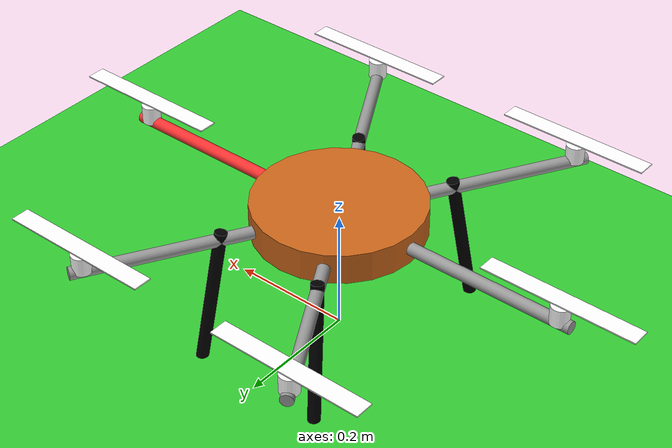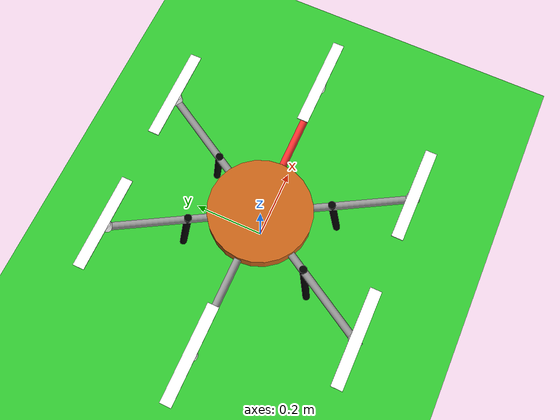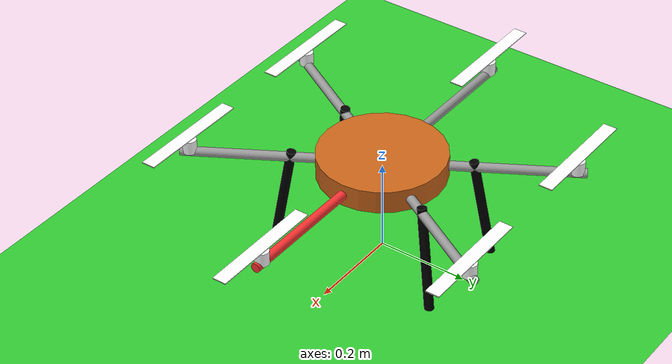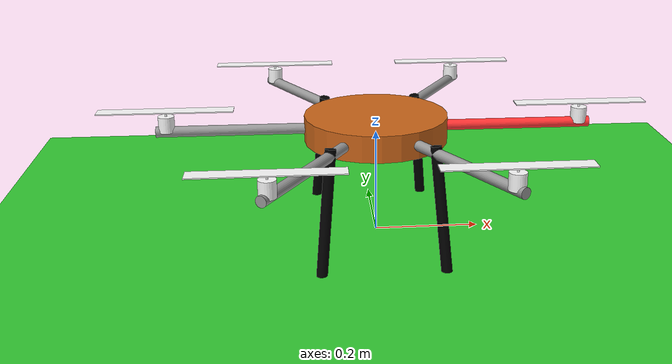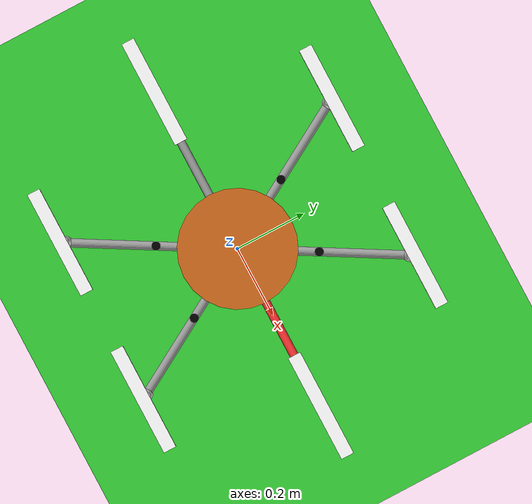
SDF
<?xml version="1.0"?>
<sdf version="1.5">
  <world name="mrsim">
    <physics name='1ms' type='unused'>
      <max_step_size>0.002000</max_step_size>
      <real_time_factor>1.000000</real_time_factor>
      <real_time_update_rate>500.000000</real_time_update_rate>
      <gravity>0 0 -9.81</gravity>
      <magnetic_field>23.816e-6 -0.41e-6 -39.829e-6</magnetic_field>
    </physics>
    <light type="directional" name="sun">
      <cast_shadows>true</cast_shadows>
      <pose>0 0 10 0 0 0</pose>
      <diffuse>0.8 0.8 0.8 1</diffuse>
      <specular>0.2 0.2 0.2 1</specular>
      <attenuation><range>1000</range><constant>0.9</constant><linear>0.01</linear><quadratic>0.001</quadratic></attenuation>
      <direction>-0.5 0.1 -0.9</direction>
    </light>
    <model name="ground_plane">
      <static>true</static>
      <link name="link">
        <collision name="collision">
          <geometry><plane><normal>0 0 1.0</normal><size>100 100</size></plane></geometry>
        </collision>
        <visual name="visual">
          <geometry><plane><normal>0 0 1.0</normal><size>100 100</size></plane></geometry>
          <material><ambient>0.2 0.8 0.2 1</ambient><diffuse>0.2 0.8 0.2 1</diffuse><specular>0.2 0.8 0.2 1</specular></material>
        </visual>
      </link>
    </model>
    <include>
      <uri>model://mrsim-hexa-ua</uri>
      <name>hu6</name>
      <pose>0 0 0.21 0 0 0</pose>
    </include>
    <plugin name="gz::sim::systems::Sensors" filename="gz-sim-sensors-system">
      <render_engine>ogre2</render_engine>
    </plugin>
    <plugin name="optitrack" filename="optitrack-gazebo.so">
      <hz>100</hz>
      <port>1509</port>
      <publish>
        <link>hu6::base</link>
        <name>HU_6</name>
      </publish>
    </plugin>
  </world>
</sdf>

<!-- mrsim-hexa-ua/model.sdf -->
<!-- Under-actuated hexarotor: based on mrsim-tilthex with tilt removed (pitch=0) -->
<sdf version="1.5">
  <model name="mrsim-hexa-ua">
    <link name="base">
      <inertial>
        <mass>2.3</mass>
        <inertia>
          <ixx>0.0115</ixx><ixy>0</ixy><ixz>0</ixz>
          <iyy>0.0114</iyy><iyz>0</iyz>
          <izz>0.0194</izz>
        </inertia>
      </inertial>
      <collision name="base">
        <pose>0 0 -0.05 0 0 0</pose>
        <geometry><cylinder><radius>0.1354</radius><length>0.15</length></cylinder></geometry>
      </collision>
      <collision name="land_1">
        <pose>0.2 0 -0.21 0 0 0</pose>
        <geometry><sphere><radius>0.03</radius></sphere></geometry>
      </collision>
      <collision name="land_2">
        <pose>-0.1 0.173 -0.21 0 0 0</pose>
        <geometry><sphere><radius>0.03</radius></sphere></geometry>
      </collision>
      <collision name="land_3">
        <pose>-0.1 -0.173 -0.21 0 0 0</pose>
        <geometry><sphere><radius>0.03</radius></sphere></geometry>
      </collision>
      <visual name="body">
        <geometry><cylinder><radius>0.1354</radius><length>0.05</length></cylinder></geometry>
        <material><ambient>0.8 0.4 0.1 1</ambient><diffuse>0.8 0.4 0.1 1</diffuse></material>
      </visual>
      <visual name="lander-1">
        <pose>0.1025 0.1776 -0.11 3.1416 -0.1736 1.0472</pose>
        <geometry>
          <cylinder><radius>0.01</radius><length>0.25</length></cylinder>
        </geometry>
        <material>
          <ambient>0 0 0 1.0</ambient>
          <diffuse>0 0 0 1.0</diffuse>
        </material>
      </visual>
      <visual name="lander-2">
        <pose>-0.1025 0.1776 -0.11 3.1416 -0.1736 2.0944</pose>
        <geometry>
          <cylinder><radius>0.01</radius><length>0.25</length></cylinder>
        </geometry>
        <material>
          <ambient>0 0 0 1.0</ambient>
          <diffuse>0 0 0 1.0</diffuse>
        </material>
      </visual>
      <visual name="lander-3">
       <pose>-0.1025 -0.1776 -0.11 3.1416 0.1736 1.0472</pose>
        <geometry>
          <cylinder><radius>0.01</radius><length>0.25</length></cylinder>
        </geometry>
        <material>
          <ambient>0 0 0 1.0</ambient>
          <diffuse>0 0 0 1.0</diffuse>
        </material>
      </visual>
      <visual name="lander-4">
        <pose>0.1025 -0.1776 -0.11 3.1416 0.1736 2.0944</pose>
        <geometry>
          <cylinder><radius>0.01</radius><length>0.25</length></cylinder>
        </geometry>
        <material>
          <ambient>0 0 0 1.0</ambient>
          <diffuse>0 0 0 1.0</diffuse>
        </material>
      </visual>

      <visual name="arm-1">
        <pose>0.2150 0 0 0 1.5708 0</pose>
        <geometry><cylinder><radius>0.01</radius><length>0.38998</length></cylinder></geometry>
        <material><ambient>1.0 0.2 0.2 1.0</ambient><diffuse>1.0 0.2 0.2 1.0</diffuse></material>
      </visual>
      <visual name="arm-2">
        <pose>0.1025 0.1776 0 0 1.5708 1.0472</pose>
        <geometry><cylinder><radius>0.01</radius><length>0.40998</length></cylinder></geometry>
        <material><ambient>0.6 0.6 0.6 1</ambient><diffuse>0.6 0.6 0.6 1</diffuse></material>
      </visual>
      <visual name="arm-3">
        <pose>-0.1025 0.1776 0 0 1.5708 2.0944</pose>
        <geometry><cylinder><radius>0.01</radius><length>0.40998</length></cylinder></geometry>
        <material><ambient>0.6 0.6 0.6 1</ambient><diffuse>0.6 0.6 0.6 1</diffuse></material>
      </visual>
      <visual name="arm-4">
        <pose>-0.2150 0 0 0 1.5708 0</pose>
        <geometry><cylinder><radius>0.01</radius><length>0.38998</length></cylinder></geometry>
        <material><ambient>0.6 0.6 0.6 1</ambient><diffuse>0.6 0.6 0.6 1</diffuse></material>
      </visual>
      <visual name="arm-5">
        <pose>-0.1025 -0.1776 0 0 1.5708 -2.0944</pose>
        <geometry><cylinder><radius>0.01</radius><length>0.40998</length></cylinder></geometry>
        <material><ambient>0.6 0.6 0.6 1</ambient><diffuse>0.6 0.6 0.6 1</diffuse></material>
      </visual>
      <visual name="arm-6">
        <pose>0.1025 -0.1776 0 0 1.5708 -1.0472</pose>
        <geometry><cylinder><radius>0.01</radius><length>0.40998</length></cylinder></geometry>
        <material><ambient>0.6 0.6 0.6 1</ambient><diffuse>0.6 0.6 0.6 1</diffuse></material>
      </visual>
    </link>

    <include>
      <uri>model://mrsim-rotor</uri>
      <name>rotor-1</name>
      <pose>0.38998 0 0 0 0 0</pose>
    </include>
    <joint name="motor-1" type="revolute">
      <parent>base</parent>
      <child>rotor-1::propeller</child>
      <axis><xyz>0 0 1</xyz></axis>
    </joint>

    <include>
      <uri>model://mrsim-rotor</uri>
      <name>rotor-2</name>
      <pose>0.195 0.3377 0 0 0 0</pose>
    </include>
    <joint name="motor-2" type="revolute">
      <parent>base</parent>
      <child>rotor-2::propeller</child>
      <axis><xyz>0 0 1</xyz></axis>
    </joint>

    <include>
      <uri>model://mrsim-rotor</uri>
      <name>rotor-3</name>
      <pose>-0.195 0.3377 0 0 0 0</pose>
    </include>
    <joint name="motor-3" type="revolute">
      <parent>base</parent>
      <child>rotor-3::propeller</child>
      <axis><xyz>0 0 1</xyz></axis>
    </joint>

    <include>
      <uri>model://mrsim-rotor</uri>
      <name>rotor-4</name>
      <pose>-0.38998 0 0 0 0 0</pose>
    </include>
    <joint name="motor-4" type="revolute">
      <parent>base</parent>
      <child>rotor-4::propeller</child>
      <axis><xyz>0 0 1</xyz></axis>
    </joint>

    <include>
      <uri>model://mrsim-rotor</uri>
      <name>rotor-5</name>
      <pose>-0.195 -0.3377 0 0 0 0</pose>
    </include>
    <joint name="motor-5" type="revolute">
      <parent>base</parent>
      <child>rotor-5::propeller</child>
      <axis><xyz>0 0 1</xyz></axis>
    </joint>

    <include>
      <uri>model://mrsim-rotor</uri>
      <name>rotor-6</name>
      <pose>0.195 -0.3377 0 0 0 0</pose>
    </include>
    <joint name="motor-6" type="revolute">
      <parent>base</parent>
      <child>rotor-6::propeller</child>
      <axis><xyz>0 0 1</xyz></axis>
    </joint>

    <plugin name="mrsim" filename="mrsim-gazebo.so">
      <link>base</link>
      <rotors>
        <noise>0.03</noise>
        <cf>9.9016e-4</cf>
        <ct>1.9e-5</ct>
        <vfxy>0.5</vfxy><vfz>0.5</vfz>
        <vtxy>0.5</vtxy><vtz>0.5</vtz>
        <rotor><joint spin="cw">motor-1</joint></rotor>
        <rotor><joint spin="ccw">motor-2</joint></rotor>
        <rotor><joint spin="cw">motor-3</joint></rotor>
        <rotor><joint spin="ccw">motor-4</joint></rotor>
        <rotor><joint spin="cw">motor-5</joint></rotor>
        <rotor><joint spin="ccw">motor-6</joint></rotor>
      </rotors>
    </plugin>
  </model>
</sdf>

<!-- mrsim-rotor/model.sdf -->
<sdf version="1.5">
  <model name="mrsim-rotor">
    <link name="propeller">
      <inertial>
        <mass>0.07</mass>
        <inertia>
          <ixx>4e-5</ixx><ixy>0</ixy><ixz>0</ixz>
          <iyy>4e-5</iyy><iyz>0</iyz>
          <izz>8e-5</izz>
        </inertia>
      </inertial>

      <collision name="collision">
        <pose>0 0 0.04 0 0 0</pose>
        <geometry>
          <cylinder><radius>0.127</radius><length>0.002</length></cylinder>
        </geometry>
      </collision>

      <visual name="motor">
        <pose>0 0 0.015 0 0 0</pose>
        <geometry>
          <cylinder><radius>0.015</radius><length>0.03</length></cylinder>
        </geometry>
        <material>
          <ambient>0.1 0.1 0.1 1</ambient>
          <diffuse>1.0 1.0 1.0 1</diffuse>
        </material>
      </visual>

      <visual name="axle">
        <pose>0 0 0.035 0 0 0</pose>
        <geometry>
          <cylinder><radius>0.002</radius><length>0.01</length></cylinder>
        </geometry>
        <material>
          <ambient>0.1 0.1 0.1 1</ambient>
          <diffuse>1.0 1.0 1.0 1</diffuse>
        </material>
      </visual>

      <visual name="blade">
        <pose>0 0 0.04 0 0 0</pose>
        <geometry>
          <box><size>0.25 0.03 0.002</size></box>
        </geometry>
        <material>
          <ambient>0.1 0.1 0.1 1</ambient>
          <diffuse>1.0 1.0 1.0 1</diffuse>
        </material>
      </visual>
    </link>
  </model>
</sdf>
